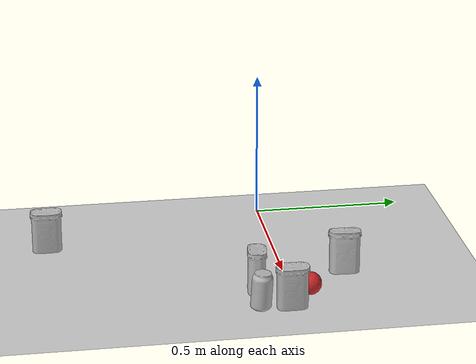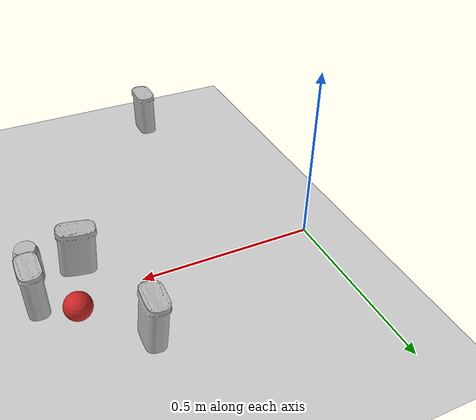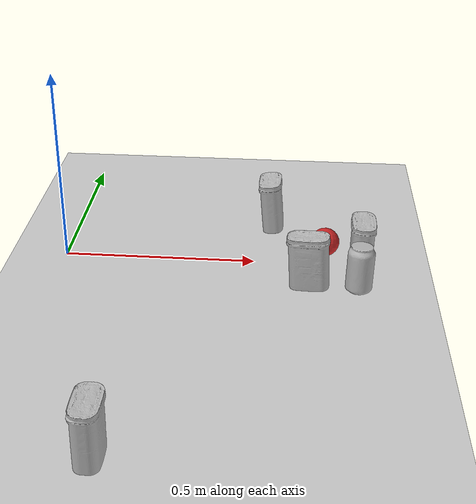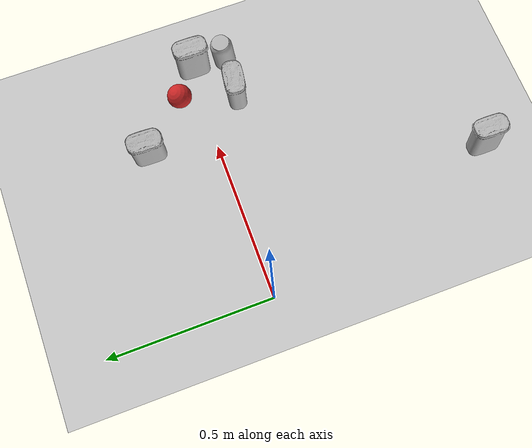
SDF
<sdf version="1.7">
 <world name="default">
  <model name="ground_plane">
   <static>1</static>
   <link name="link">
    <collision name="collision">
     <geometry><plane><normal>0 0 1</normal><size>100 100</size></plane></geometry>
     <surface>
      <contact><collide_bitmask>65535</collide_bitmask></contact>
      <friction><ode><mu>100</mu><mu2>50</mu2></ode></friction>
     </surface>
    </collision>
    <visual name="visual">
     <cast_shadows>0</cast_shadows>
     <geometry><plane><normal>0 0 1</normal><size>100 100</size></plane></geometry>
     <material>
      <script><uri>file://media/materials/scripts/gazebo.material</uri><name>Gazebo/Grey</name></script>
     </material>
    </visual>
   </link>
  </model>
  <light name="sun" type="directional">
   <cast_shadows>0</cast_shadows>
   <pose>0 0 10 0 -0 0</pose>
   <diffuse>0.8 0.8 0.8 1</diffuse>
   <specular>0.2 0.2 0.2 1</specular>
   <attenuation>
    <range>1000</range>
    <constant>0.9</constant>
    <linear>0.01</linear>
    <quadratic>0.001</quadratic>
   </attenuation>
   <direction>-0.5 0.1 -0.9</direction>
   <spot><inner_angle>0</inner_angle><outer_angle>0</outer_angle><falloff>0</falloff></spot>
  </light>
  <physics name="default_physics" default="1" type="ode">
   <real_time_update_rate>1000</real_time_update_rate>
   <bullet>
    <solver><iters>50</iters><min_step_size>0.0001</min_step_size><sor>1.3</sor><type>quick</type></solver>
    <constraints>
     <contact_surface_layer>0.001</contact_surface_layer>
     <cfm>0</cfm>
     <erp>0.2</erp>
     <split_impulse>1</split_impulse>
     <split_impulse_penetration_threshold>-0.01</split_impulse_penetration_threshold>
    </constraints>
   </bullet>
   <max_contacts>20</max_contacts>
   <max_step_size>0.001</max_step_size>
   <real_time_factor>1</real_time_factor>
  </physics>
  <gravity>0 0 -9.8</gravity>
  <magnetic_field>6e-06 2.3e-05 -4.2e-05</magnetic_field>
  <atmosphere type="adiabatic"/>
  <scene><ambient>0.4 0.4 0.4 1</ambient><background>0.7 0.7 0.7 1</background><shadows>0</shadows></scene>
  <spherical_coordinates>
   <surface_model>EARTH_WGS84</surface_model>
   <latitude_deg>0</latitude_deg>
   <longitude_deg>0</longitude_deg>
   <elevation>0</elevation>
   <heading_deg>0</heading_deg>
  </spherical_coordinates>
  <model name="Threshold_Porcelain_Coffee_Mug_All_Over_Bead_White">
   <link name="link_0">
    <visual name="visual">
     <geometry>
      <mesh>
       <uri>/home/diana/.ignition/fuel/fuel.ignitionrobotics.org/googleresearch/models/threshold_porcelain_coffee_mug_all_over_bead_white/1/meshes/model.obj</uri>
      </mesh>
     </geometry>
    </visual>
    <collision name="collision_0">
     <geometry>
      <mesh>
       <uri>/home/diana/.ignition/fuel/fuel.ignitionrobotics.org/googleresearch/models/threshold_porcelain_coffee_mug_all_over_bead_white/1/meshes/model.obj</uri>
      </mesh>
     </geometry>
    </collision>
    <inertial>
     <inertia><ixx>1</ixx><ixy>0</ixy><ixz>0</ixz><iyy>1</iyy><iyz>0</iyz><izz>1</izz></inertia>
     <mass>1</mass>
    </inertial>
   </link>
   <pose>0.54495 0.197512 0.000511 -0.019298 -0.092073 -0.019261</pose>
  </model>
  <model name="Perricone_MD_Vitamin_C_Ester_Serum">
   <link name="link_0">
    <visual name="visual">
     <geometry>
      <mesh>
       <uri>/home/diana/.ignition/fuel/fuel.ignitionrobotics.org/googleresearch/models/perricone_md_vitamin_c_ester_serum/1/meshes/model.obj</uri>
      </mesh>
     </geometry>
    </visual>
    <collision name="collision_0">
     <geometry>
      <mesh>
       <uri>/home/diana/.ignition/fuel/fuel.ignitionrobotics.org/googleresearch/models/perricone_md_vitamin_c_ester_serum/1/meshes/model.obj</uri>
      </mesh>
     </geometry>
    </collision>
    <inertial>
     <inertia><ixx>1</ixx><ixy>0</ixy><ixz>0</ixz><iyy>1</iyy><iyz>0</iyz><izz>1</izz></inertia>
     <mass>1</mass>
    </inertial>
   </link>
   <pose>0.643272 -0.111509 0.001012 0.061926 -0.01928 -1.702</pose>
  </model>
  <model name="coke_can">
   <link name="link">
    <inertial>
     <pose>0 0 0.06 0 -0 0</pose>
     <mass>0.39</mass>
     <inertia>
      <ixx>0.00055575</ixx>
      <ixy>0</ixy>
      <ixz>0</ixz>
      <iyy>0.00055575</iyy>
      <iyz>0</iyz>
      <izz>0.0001755</izz>
     </inertia>
    </inertial>
    <collision name="collision">
     <pose>0.003937 0.004724 -0.18 0 -0 0</pose>
     <geometry><mesh><uri>model://coke_can/meshes/coke_can.dae</uri></mesh></geometry>
     <surface>
      <friction><ode><mu>1</mu><mu2>1</mu2></ode></friction>
      <contact><ode><kp>1e+07</kp><kd>1</kd><min_depth>0.001</min_depth><max_vel>0.1</max_vel></ode></contact>
     </surface>
    </collision>
    <visual name="visual">
     <pose>0.003937 0.004724 -0.18 0 -0 0</pose>
     <geometry><mesh><uri>model://coke_can/meshes/coke_can.dae</uri></mesh></geometry>
    </visual>
   </link>
   <pose>0.766127 -0.117557 -0.002718 -0.062648 0.002522 -0.210031</pose>
  </model>
  <model name="Target_Basket_Medium">
   <link name="link_0">
    <visual name="visual">
     <geometry>
      <mesh>
       <uri>/home/diana/.ignition/fuel/fuel.ignitionrobotics.org/googleresearch/models/target_basket_medium/1/meshes/model.obj</uri>
      </mesh>
     </geometry>
    </visual>
    <collision name="collision_0">
     <geometry>
      <mesh>
       <uri>/home/diana/.ignition/fuel/fuel.ignitionrobotics.org/googleresearch/models/target_basket_medium/1/meshes/model.obj</uri>
      </mesh>
     </geometry>
    </collision>
    <inertial>
     <inertia><ixx>1</ixx><ixy>0</ixy><ixz>0</ixz><iyy>1</iyy><iyz>0</iyz><izz>1</izz></inertia>
     <mass>1</mass>
    </inertial>
   </link>
   <pose>0.221491 -0.754383 -0.001297 -0.000789 0.013139 -0.000111</pose>
  </model>
  <model name="Dino_4">
   <link name="link_0">
    <visual name="visual">
     <geometry>
      <mesh>
       <uri>/home/diana/.ignition/fuel/fuel.ignitionrobotics.org/googleresearch/models/dino_4/1/meshes/model.obj</uri>
      </mesh>
     </geometry>
    </visual>
    <collision name="collision_0">
     <geometry>
      <mesh>
       <uri>/home/diana/.ignition/fuel/fuel.ignitionrobotics.org/googleresearch/models/dino_4/1/meshes/model.obj</uri>
      </mesh>
     </geometry>
    </collision>
    <inertial>
     <inertia><ixx>1</ixx><ixy>0</ixy><ixz>0</ixz><iyy>1</iyy><iyz>0</iyz><izz>1</izz></inertia>
     <mass>1</mass>
    </inertial>
   </link>
   <pose>0.774067 -0.017934 -0.000255 0.00013 0.009637 -0.000366</pose>
  </model>
  <model name="cricket_ball">
   <link name="link">
    <pose>0 0 0.0375 0 -0 0</pose>
    <inertial>
     <mass>0.1467</mass>
     <inertia>
      <ixx>8.25187e-05</ixx>
      <ixy>0</ixy>
      <ixz>0</ixz>
      <iyy>8.25187e-05</iyy>
      <iyz>0</iyz>
      <izz>8.25187e-05</izz>
     </inertia>
    </inertial>
    <collision name="collision">
     <geometry><sphere><radius>0.0375</radius></sphere></geometry>
     <surface>
      <contact>
       <poissons_ratio>0.347</poissons_ratio>
       <elastic_modulus>8.8e+09</elastic_modulus>
       <ode><kp>100000</kp><kd>100</kd><max_vel>100</max_vel><min_depth>0.001</min_depth></ode>
      </contact>
      <friction>
       <torsional>
        <coefficient>1</coefficient>
        <use_patch_radius>0</use_patch_radius>
        <surface_radius>0.01</surface_radius>
       </torsional>
      </friction>
     </surface>
    </collision>
    <visual name="visual">
     <geometry><sphere><radius>0.0375</radius></sphere></geometry>
     <material>
      <script><uri>file://media/materials/scripts/gazebo.material</uri><name>Gazebo/Red</name></script>
     </material>
    </visual>
    <velocity_decay><linear>0</linear><angular>0.005</angular></velocity_decay>
   </link>
   <pose>0.682796 0.042272 0.001928 -0.397583 0.031651 -0.066301</pose>
  </model>
 </world>
</sdf>
